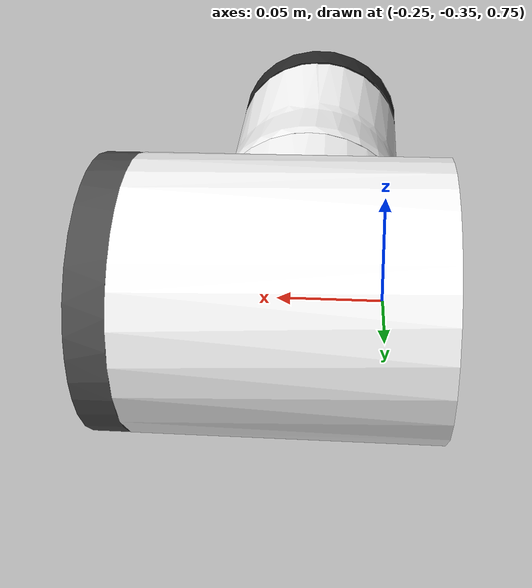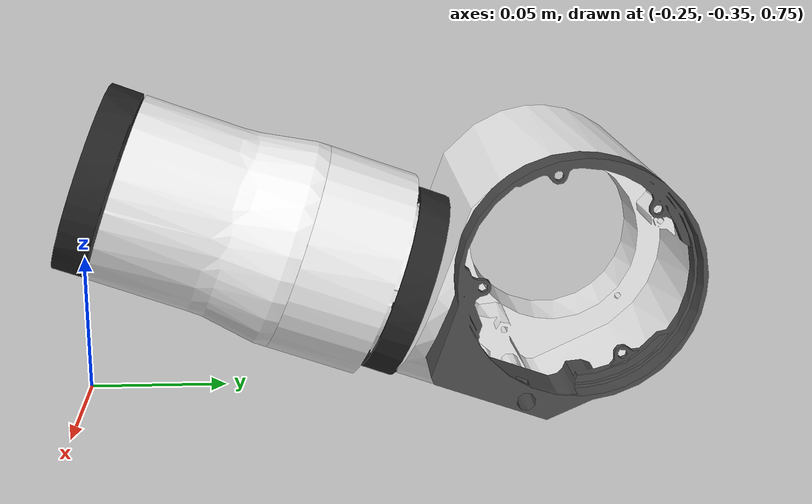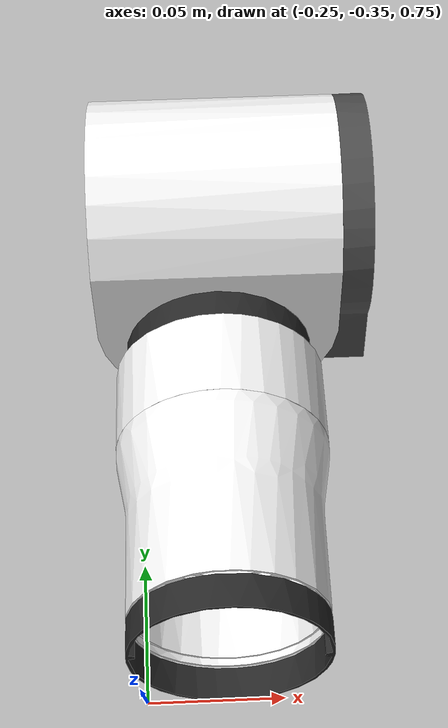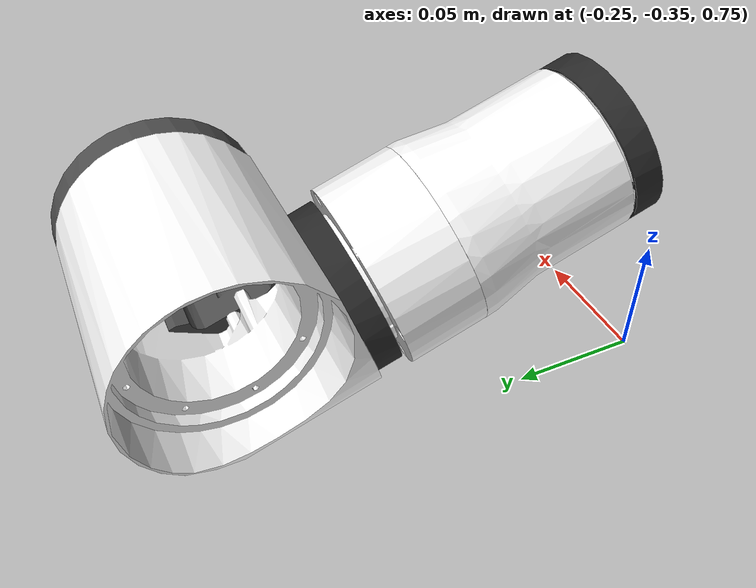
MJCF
<mujoco model="right_arm_4">
  <default>
    <default class="visual">
      <geom group="2" type="mesh" contype="0" conaffinity="0"/>
    </default>
    <default class="collision">
      <geom group="3" type="mesh"/>
    </default>
  </default>
  <asset>
    <material name="247,247,247_27.001" specular="1.0" shininess="0.2" rgba="0.968627 0.968627 0.968627 1.000000"/>
    <material name="247,247,247_28.001" specular="1.0" shininess="0.2" rgba="0.968627 0.968627 0.968627 1.000000"/>
    <material name="247,247,247_33.001" specular="1.0" shininess="0.2" rgba="0.968627 0.968627 0.968627 1.000000"/>
    <material name="39,39,39_4.004" specular="1.0" shininess="0.2" rgba="0.152941 0.152941 0.152941 1.000000"/>
    <material name="39,39,39_4.005" specular="1.0" shininess="0.2" rgba="0.152941 0.152941 0.152941 1.000000"/>
    <material name="75,75,75_22.001" specular="1.0" shininess="0.2" rgba="0.294118 0.294118 0.294118 1.000000"/>
    <mesh file="right_arm_4_0.obj"/>
    <mesh file="right_arm_4_1.obj"/>
    <mesh file="right_arm_4_2.obj"/>
    <mesh file="right_arm_4_3.obj"/>
    <mesh file="right_arm_4_4.obj"/>
    <mesh file="right_arm_4_5.obj"/>
  </asset>
  <worldbody>
    <body name="right_arm_4">
      <geom mesh="right_arm_4_0" material="75,75,75_22.001" class="visual"/>
      <geom mesh="right_arm_4_1" material="247,247,247_27.001" class="visual"/>
      <geom mesh="right_arm_4_2" material="39,39,39_4.004" class="visual"/>
      <geom mesh="right_arm_4_3" material="39,39,39_4.005" class="visual"/>
      <geom mesh="right_arm_4_4" material="247,247,247_33.001" class="visual"/>
      <geom mesh="right_arm_4_5" material="247,247,247_28.001" class="visual"/>
      <geom mesh="right_arm_4_0" class="collision"/>
      <geom mesh="right_arm_4_1" class="collision"/>
      <geom mesh="right_arm_4_2" class="collision"/>
      <geom mesh="right_arm_4_3" class="collision"/>
      <geom mesh="right_arm_4_4" class="collision"/>
      <geom mesh="right_arm_4_5" class="collision"/>
    </body>
  </worldbody>
</mujoco>
